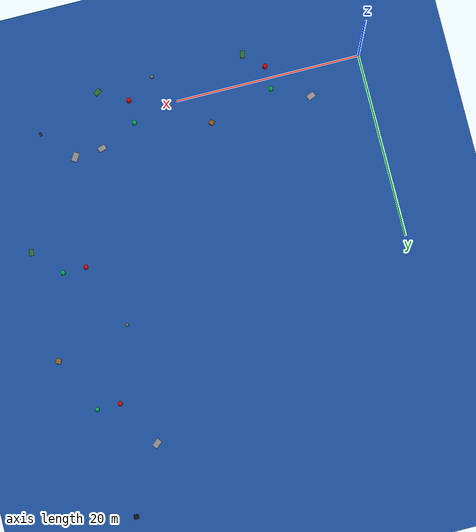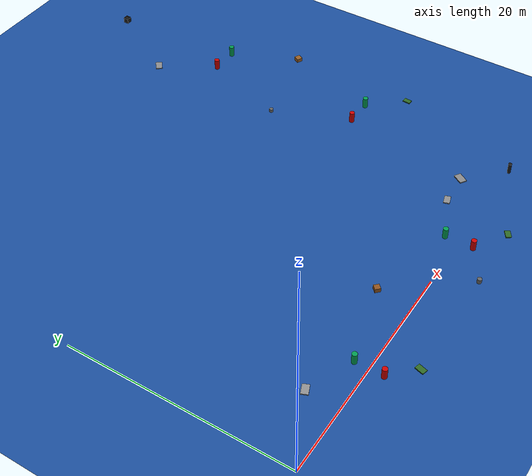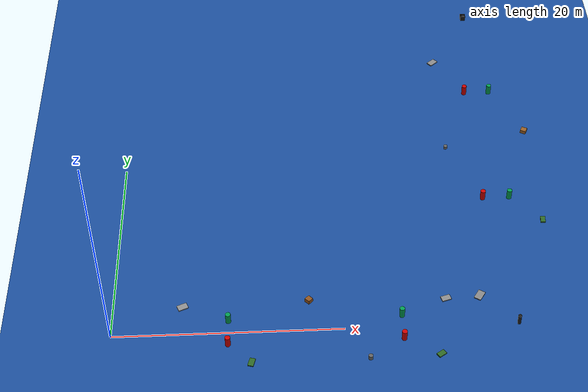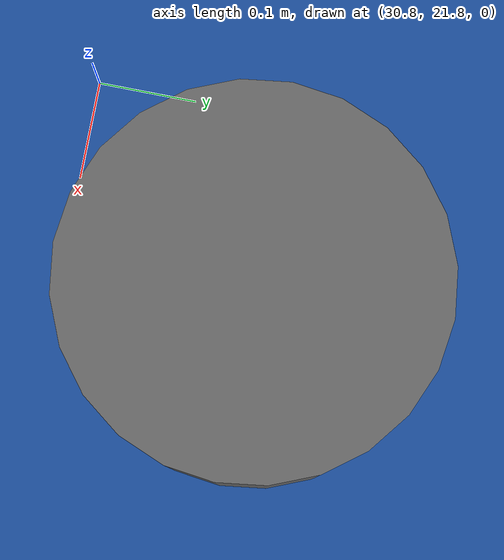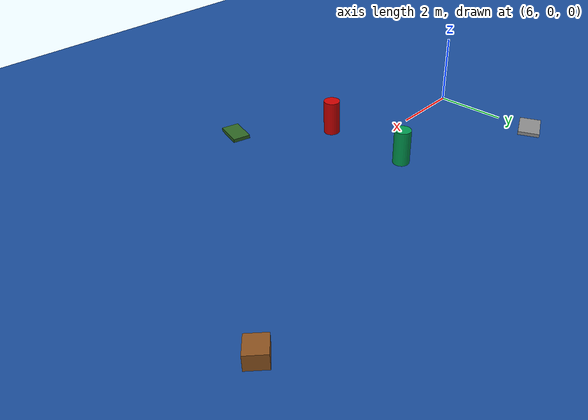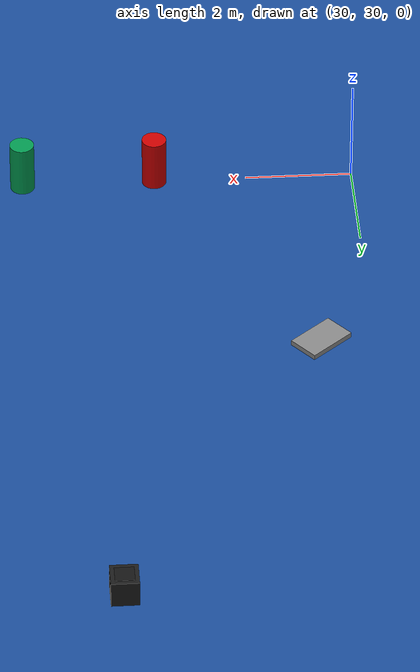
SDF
<sdf version="1.10">
 <world name="course_3_dogleg">
  <physics name="1ms" type="ignore">
   <max_step_size>0.001</max_step_size>
   <real_time_factor>1.0</real_time_factor>
  </physics>
  <plugin filename="gz-sim-physics-system" name="gz::sim::systems::Physics"/>
  <plugin filename="gz-sim-sensors-system" name="gz::sim::systems::Sensors">
   <render_engine>ogre2</render_engine>
  </plugin>
  <plugin filename="gz-sim-user-commands-system" name="gz::sim::systems::UserCommands"/>
  <plugin filename="gz-sim-scene-broadcaster-system" name="gz::sim::systems::SceneBroadcaster"/>
  <plugin filename="gz-sim-imu-system" name="gz::sim::systems::Imu"/>
  <plugin filename="gz-sim-navsat-system" name="gz::sim::systems::NavSat"/>
  <spherical_coordinates>
   <surface_model>EARTH_WGS84</surface_model>
   <latitude_deg>-35.363262</latitude_deg>
   <longitude_deg>149.165237</longitude_deg>
   <elevation>0</elevation>
   <heading_deg>0</heading_deg>
  </spherical_coordinates>
  <scene>
   <ambient>0.4 0.4 0.4 1.0</ambient>
   <background>0.6 0.7 0.85 1.0</background>
   <shadows>true</shadows>
  </scene>
  <light name="sun" type="directional">
   <pose>0 0 120 0 0 0</pose>
   <diffuse>0.9 0.9 0.9 1</diffuse>
   <specular>0.4 0.4 0.4 1</specular>
   <attenuation>
    <range>1000</range>
    <constant>0.9</constant>
    <linear>0.01</linear>
    <quadratic>0.001</quadratic>
   </attenuation>
   <direction>0.5 -0.5 -1.0</direction>
  </light>
  <model name="axes">
   <static>1</static>
   <link name="link">
    <sensor name="navsat_sensor" type="navsat"><always_on>1</always_on><update_rate>1</update_rate></sensor>
   </link>
  </model>
  <model name="ocean_surface">
   <static>true</static>
   <link name="water_link">
    <collision name="water_collision">
     <geometry><plane><normal>0 0 1</normal><size>500 500</size></plane></geometry>
    </collision>
   </link>
  </model>
  <include><uri>coast_waves</uri><name>ocean_waves</name></include>
  <plugin filename="libPublisherPlugin.so" name="vrx::PublisherPlugin">
   <message type="gz.msgs.Param" topic="/vrx/wavefield/parameters" every="2.0">params { key: "direction"  value { type: DOUBLE double_value: 0.0 } }
        params { key: "gain"       value { type: DOUBLE double_value: 0.5 } }
        params { key: "period"     value { type: DOUBLE double_value: 5   } }
        params { key: "steepness" value { type: DOUBLE double_value: 0   } }</message>
  </plugin>
  <model name="gate1_green">
   <static>true</static>
   <pose>10 1.25 0.5 0 0 0</pose>
   <link name="link">
    <visual name="visual">
     <geometry><cylinder><radius>0.23</radius><length>0.99</length></cylinder></geometry>
     <material>
      <ambient>0.0 0.4 0.20 1</ambient>
      <diffuse>0.0 0.6 0.31 1</diffuse>
      <emissive>0.0 1.0 0.51 1</emissive>
     </material>
    </visual>
   </link>
  </model>
  <model name="gate1_red">
   <static>true</static>
   <pose>10 -1.25 0.5 0 0 0</pose>
   <link name="link">
    <visual name="visual">
     <geometry><cylinder><radius>0.23</radius><length>0.99</length></cylinder></geometry>
     <material>
      <ambient>0.5 0.0 0.0 1</ambient>
      <diffuse>0.8 0.0 0.0 1</diffuse>
      <emissive>1.0 0.0 0.0 1</emissive>
     </material>
    </visual>
   </link>
  </model>
  <model name="gate2_green">
   <static>true</static>
   <pose>25 1.25 0.5 0 0 0</pose>
   <link name="link">
    <visual name="visual">
     <geometry><cylinder><radius>0.23</radius><length>0.99</length></cylinder></geometry>
     <material>
      <ambient>0.0 0.4 0.20 1</ambient>
      <diffuse>0.0 0.6 0.31 1</diffuse>
      <emissive>0.0 1.0 0.51 1</emissive>
     </material>
    </visual>
   </link>
  </model>
  <model name="gate2_red">
   <static>true</static>
   <pose>25 -1.25 0.5 0 0 0</pose>
   <link name="link">
    <visual name="visual">
     <geometry><cylinder><radius>0.23</radius><length>0.99</length></cylinder></geometry>
     <material>
      <ambient>0.5 0.0 0.0 1</ambient>
      <diffuse>0.8 0.0 0.0 1</diffuse>
      <emissive>1.0 0.0 0.0 1</emissive>
     </material>
    </visual>
   </link>
  </model>
  <model name="corner_post">
   <static>true</static>
   <pose>35 0 0.5 0 0 0</pose>
   <link name="link">
    <visual name="visual">
     <geometry><cylinder><radius>0.15</radius><length>0.99</length></cylinder></geometry>
     <material>
      <ambient>0.05 0.05 0.05 1</ambient>
      <diffuse>0.1 0.1 0.1 1</diffuse>
      <emissive>0.0 0.0 0.0 1</emissive>
     </material>
    </visual>
   </link>
  </model>
  <model name="gate3_green">
   <static>true</static>
   <pose>36.25 15 0.5 0 0 0</pose>
   <link name="link">
    <visual name="visual">
     <geometry><cylinder><radius>0.23</radius><length>0.99</length></cylinder></geometry>
     <material>
      <ambient>0.0 0.4 0.20 1</ambient>
      <diffuse>0.0 0.6 0.31 1</diffuse>
      <emissive>0.0 1.0 0.51 1</emissive>
     </material>
    </visual>
   </link>
  </model>
  <model name="gate3_red">
   <static>true</static>
   <pose>33.75 15 0.5 0 0 0</pose>
   <link name="link">
    <visual name="visual">
     <geometry><cylinder><radius>0.23</radius><length>0.99</length></cylinder></geometry>
     <material>
      <ambient>0.5 0.0 0.0 1</ambient>
      <diffuse>0.8 0.0 0.0 1</diffuse>
      <emissive>1.0 0.0 0.0 1</emissive>
     </material>
    </visual>
   </link>
  </model>
  <model name="gate4_green">
   <static>true</static>
   <pose>36.25 30 0.5 0 0 0</pose>
   <link name="link">
    <visual name="visual">
     <geometry><cylinder><radius>0.23</radius><length>0.99</length></cylinder></geometry>
     <material>
      <ambient>0.0 0.4 0.20 1</ambient>
      <diffuse>0.0 0.6 0.31 1</diffuse>
      <emissive>0.0 1.0 0.51 1</emissive>
     </material>
    </visual>
   </link>
  </model>
  <model name="gate4_red">
   <static>true</static>
   <pose>33.75 30 0.5 0 0 0</pose>
   <link name="link">
    <visual name="visual">
     <geometry><cylinder><radius>0.23</radius><length>0.99</length></cylinder></geometry>
     <material>
      <ambient>0.5 0.0 0.0 1</ambient>
      <diffuse>0.8 0.0 0.0 1</diffuse>
      <emissive>1.0 0.0 0.0 1</emissive>
     </material>
    </visual>
   </link>
  </model>
  <model name="light_buoy">
   <static>true</static>
   <pose>35 42 0.5 0 0 0</pose>
   <link name="link">
    <visual name="body">
     <geometry><box><size>0.5 0.5 0.5</size></box></geometry>
     <material>
      <ambient>0.1 0.1 0.1 1</ambient>
      <diffuse>0.1 0.1 0.1 1</diffuse>
      <specular>0.2 0.2 0.2 1</specular>
     </material>
    </visual>
    <visual name="led_face">
     <pose>0.251 0 0 0 0 0</pose>
     <geometry><box><size>0.01 0.35 0.35</size></box></geometry>
     <material>
      <ambient>0.08 0.08 0.08 1</ambient>
      <diffuse>0.08 0.08 0.08 1</diffuse>
      <specular>0.2 0.2 0.2 1</specular>
     </material>
    </visual>
    <visual name="led_top">
     <pose>0 0 0.251 0 0 0</pose>
     <geometry><box><size>0.35 0.35 0.01</size></box></geometry>
     <material>
      <ambient>0.08 0.08 0.08 1</ambient>
      <diffuse>0.08 0.08 0.08 1</diffuse>
      <specular>0.2 0.2 0.2 1</specular>
     </material>
    </visual>
    <light name="pulse_led" type="point">
     <pose>0.3 0 0 0 0 0</pose>
     <diffuse>1.0 0.0 0.0 1</diffuse>
     <specular>0.2 0.0 0.0 1</specular>
     <attenuation>
      <range>30</range>
      <constant>0.3</constant>
      <linear>0.02</linear>
      <quadratic>0.002</quadratic>
     </attenuation>
    </light>
   </link>
  </model>
  <model name="d3_gray_a">
   <static>true</static>
   <pose>6 3.0 0.05 0 0 0.4</pose>
   <link name="l">
    <visual name="v">
     <geometry><box><size>0.9 0.6 0.10</size></box></geometry>
     <material><ambient>0.45 0.45 0.45 1</ambient><diffuse>0.55 0.55 0.55 1</diffuse></material>
    </visual>
   </link>
  </model>
  <model name="d3_olive_a">
   <static>true</static>
   <pose>12 -3.2 0.05 0 0 1.3</pose>
   <link name="l">
    <visual name="v">
     <geometry><box><size>0.80 0.50 0.10</size></box></geometry>
     <material><ambient>0.12 0.28 0.10 1</ambient><diffuse>0.18 0.40 0.14 1</diffuse></material>
    </visual>
   </link>
  </model>
  <model name="d3_brown_a">
   <static>true</static>
   <pose>17 3.2 0.20 0 0 0.8</pose>
   <link name="l">
    <visual name="v">
     <geometry><box><size>0.5 0.5 0.40</size></box></geometry>
     <material><ambient>0.38 0.22 0.08 1</ambient><diffuse>0.55 0.32 0.12 1</diffuse></material>
    </visual>
   </link>
  </model>
  <model name="d3_barrel_a">
   <static>true</static>
   <pose>22 -3.2 0.20 0 0 0</pose>
   <link name="l">
    <visual name="v">
     <geometry><cylinder><radius>0.20</radius><length>0.40</length></cylinder></geometry>
     <material><ambient>0.30 0.30 0.30 1</ambient><diffuse>0.38 0.38 0.38 1</diffuse></material>
    </visual>
   </link>
  </model>
  <model name="d3_gray_b">
   <static>true</static>
   <pose>32 3.2 0.05 0 0 1.0</pose>
   <link name="l">
    <visual name="v">
     <geometry><box><size>1.0 0.65 0.10</size></box></geometry>
     <material><ambient>0.42 0.42 0.42 1</ambient><diffuse>0.52 0.52 0.52 1</diffuse></material>
    </visual>
   </link>
  </model>
  <model name="d3_olive_b">
   <static>true</static>
   <pose>28 -3.0 0.05 0 0 0.6</pose>
   <link name="l">
    <visual name="v">
     <geometry><box><size>0.75 0.48 0.10</size></box></geometry>
     <material><ambient>0.12 0.28 0.10 1</ambient><diffuse>0.18 0.40 0.14 1</diffuse></material>
    </visual>
   </link>
  </model>
  <model name="d3_gray_c">
   <static>true</static>
   <pose>29 3.0 0.05 0 0 0.3</pose>
   <link name="l">
    <visual name="v">
     <geometry><box><size>0.85 0.55 0.10</size></box></geometry>
     <material><ambient>0.44 0.44 0.44 1</ambient><diffuse>0.54 0.54 0.54 1</diffuse></material>
    </visual>
   </link>
  </model>
  <model name="d3_olive_c">
   <static>true</static>
   <pose>39 12 0.05 0 0 1.5</pose>
   <link name="l">
    <visual name="v">
     <geometry><box><size>0.70 0.45 0.10</size></box></geometry>
     <material><ambient>0.12 0.28 0.10 1</ambient><diffuse>0.18 0.40 0.14 1</diffuse></material>
    </visual>
   </link>
  </model>
  <model name="d3_barrel_b">
   <static>true</static>
   <pose>31 22 0.15 0 0 0</pose>
   <link name="l">
    <visual name="v">
     <geometry><cylinder><radius>0.18</radius><length>0.30</length></cylinder></geometry>
     <material><ambient>0.32 0.32 0.32 1</ambient><diffuse>0.40 0.40 0.40 1</diffuse></material>
    </visual>
   </link>
  </model>
  <model name="d3_brown_b">
   <static>true</static>
   <pose>39 24 0.18 0 0 1.1</pose>
   <link name="l">
    <visual name="v">
     <geometry><box><size>0.55 0.55 0.35</size></box></geometry>
     <material><ambient>0.40 0.25 0.10 1</ambient><diffuse>0.58 0.36 0.14 1</diffuse></material>
    </visual>
   </link>
  </model>
  <model name="d3_gray_d">
   <static>true</static>
   <pose>31 35 0.05 0 0 0.7</pose>
   <link name="l">
    <visual name="v">
     <geometry><box><size>0.95 0.60 0.10</size></box></geometry>
     <material><ambient>0.43 0.43 0.43 1</ambient><diffuse>0.53 0.53 0.53 1</diffuse></material>
    </visual>
   </link>
  </model>
 </world>
</sdf>

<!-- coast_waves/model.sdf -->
<!-- Stub for coast_waves: used in Docker/headless tests where vrx_gz is not installed.
     The full coast_waves mesh (waterlow.dae + libWaveVisual.so) requires vrx_gz. -->
<sdf version="1.9">
  <model name="coast_waves">
    <static>true</static>
    <link name="link">
      <visual name="water_plane">
        <geometry>
          <plane>
            <normal>0 0 1</normal>
            <size>6000 6000</size>
          </plane>
        </geometry>
        <material>
          <ambient>0.1 0.3 0.6 0.8</ambient>
          <diffuse>0.1 0.3 0.6 0.8</diffuse>
        </material>
      </visual>
    </link>
  </model>
</sdf>
